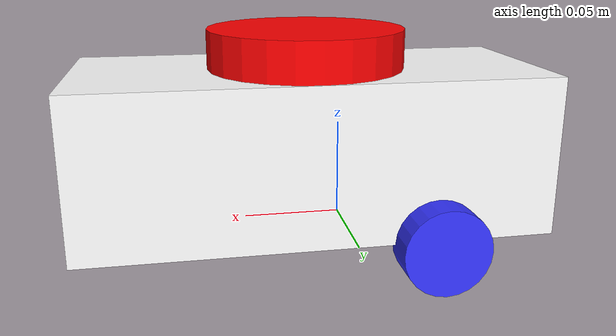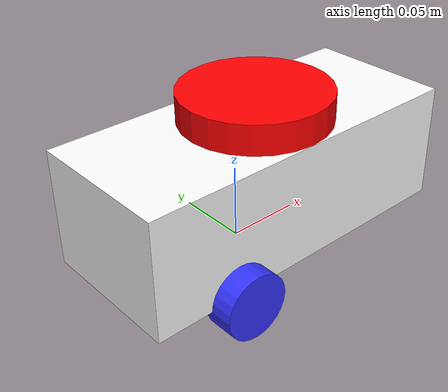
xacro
<?xml version="1.0"?>
<robot xmlns:xacro="http://www.ros.org/wiki/xacro"  name="robot">

    <xacro:arg name="use_ros2_control" default="false"/>
     <xacro:arg name="sim_mode" default="true"/>

    <xacro:include filename="robot_core.xacro" />
    <xacro:include filename="inertial_macros.xacro" />

    <xacro:if value="$(arg use_ros2_control)">
        <xacro:include filename="ros2_control.xacro" />
    </xacro:if>
    <xacro:unless value="$(arg use_ros2_control)">
        <xacro:include filename="gazebo_control.xacro" />
    </xacro:unless>

    <xacro:include filename="lidar.xacro" />

</robot>

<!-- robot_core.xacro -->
<robot xmlns:xacro="http://www.ros.org/wiki/xacro">

    <xacro:include filename="inertial_macros.xacro" />

    <material name="white">
        <color rgba="1 1 1 1"/>
    </material>

    <material name="orange">
        <color rgba="1 0.3 0.1 1"/>
    </material>

    <material name="blue">
        <color rgba="0.2 0.2 1 1"/>
    </material>

    <material name="black">
        <color rgba="0 0 0 1"/>
    </material>

    <material name="red">
        <color rgba="1 0 0 1"/>
    </material>

    <!--BASE  LINK-->
    <link name="base_link">
    </link>

    <!-- BASE_FOOTPRINT LINK -->

    <joint name="base_footprint_joint" type="fixed">
        <parent link="base_link"/>
        <child link="base_footprint"/>
        <origin xyz="0 0 0" rpy="0 0 0"/>
    </joint>

    <link name="base_footprint">
    </link>

    <!--CHASIS LINK-->
    <joint name="chassis_joint" type="fixed">
        <parent link="base_link"/>
        <child link="chassis"/>
        <origin xyz="-0.1 0 0"/>
    </joint>

    <link name="chassis">
        <visual>
            <origin xyz="0.1175 0 0.04" rpy="0 0 0"/>
            <geometry>
                <box size="0.235 0.10 0.08"/>
            </geometry>
            <material name="white"/>
        </visual>
        <collision>
            <origin xyz="0.1175 0 0.04" rpy="0 0 0"/>
            <geometry>
                <box size="0.235 0.10 0.08"/>
            </geometry>
        </collision>
        <xacro:inertial_box mass="0.5" x="0.235" y="0.10" z="0.08">
            <origin xyz="0.1175 0 0.04" rpy="0 0 0"/>
        </xacro:inertial_box>
    </link>

    <gazebo reference="chassis">
        <material>Gazebo/white</material>
    </gazebo>

    <!--LEFT WHEEL LINK-->
    <joint name="left_wheel_joint" type="continuous">
        <parent link="base_link"/>
        <child link="left_wheel"/>
        <origin xyz="-0.04 0.055 0" rpy="-${pi/2} 0 0"/>
        <axis xyz="0 0 1"/>
    </joint>

    <link name="left_wheel">
        <visual>
            <geometry>
                <cylinder radius="0.022" length="0.02" />
            </geometry>
            <material name="blue"/>
        </visual>
        <collision>
            <geometry>
                <cylinder radius="0.022" length="0.001" />
            </geometry>
        </collision>
        <xacro:inertial_cylinder mass="0.1" length="0.02" radius="0.022">
        <origin xyz="0 0 0" rpy="0 0 0"/>
    </xacro:inertial_cylinder>
    </link>

    <gazebo reference="left_wheel">
        <material>Gazebo/Blue</material>
    </gazebo>

    <!--RIGHT WHEEL LINK-->
    <joint name="right_wheel_joint" type="continuous">
        <parent link="base_link"/>
        <child link="right_wheel"/>
        <origin xyz="-0.04 -0.055 0" rpy="${pi/2} 0 0"/>
        <axis xyz="0 0 -1"/>
    </joint>

    <link name="right_wheel">
        <visual>
            <geometry>
                <cylinder radius="0.022" length="0.02" />
            </geometry>
            <material name="blue"/>
        </visual>
        <collision>
            <geometry>
                <cylinder radius="0.022" length="0.001" />
            </geometry>
        </collision>
        <xacro:inertial_cylinder mass="0.1" length="0.02" radius="0.022">
        <origin xyz="0 0 0" rpy="0 0 0"/>
    </xacro:inertial_cylinder>
    </link>

    <gazebo reference="right_wheel">
        <material>Gazebo/Blue</material>
    </gazebo>

    <!--CASTER WHEEL LINK-->
    <joint name="caster_wheel_joint" type="fixed">
        <parent link="chassis"/>
        <child link="caster_wheel"/>
        <origin xyz="0.22 0 0"/>
    </joint>

    <link name="caster_wheel">
        <visual>
            <geometry>
                <sphere radius="0.017" />
            </geometry>
            <material name="black"/>
        </visual>
        <collision>
            <geometry>
                <sphere radius="0.017" />
            </geometry>
        </collision>
        <xacro:inertial_sphere mass="0.1" radius="0.017">
        <origin xyz="0 0 0" rpy="0 0 0"/>
    </xacro:inertial_sphere>
    </link>

    <gazebo reference="caster_wheel">
        <material>Gazebo/Black</material>
        <mu1 value="0.001"/>
        <mu2 value="0.001"/>
    </gazebo>

</robot>

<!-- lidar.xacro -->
<robot xmlns:xacro="http://www.ros.org/wiki/xacro">

    <joint name="laser_joint" type="fixed">
        <parent link="chassis"/>
        <child link="laser_frame"/>
        <origin xyz="0.1175 0 0.08" rpy="0 0 0"/>
    </joint>

    <link name="laser_frame">
        <visual>
            <geometry>
                <cylinder radius="0.05" length="0.04"/>
            </geometry>
            <material name="red"/>
        </visual>
        <collision>
            <geometry>
                <cylinder radius="0.05" length="0.04"/>
            </geometry>
        </collision>
        <xacro:inertial_cylinder mass="0.1" length="0.04" radius="0.05">
            <origin xyz="0 0 0" rpy="0 0 0"/>
        </xacro:inertial_cylinder>
    </link>

    <gazebo reference="laser_frame">
        <material>Gazebo/Red</material>
        <sensor name="laser" type="ray">
            <pose> 0 0 0 0 0 0 </pose>
            <visualize>true</visualize>
            <update_rate>10</update_rate>
            <ray>
                <scan>
                    <horizontal>
                        <samples>360</samples>
                        <resolution>1</resolution>
                        <min_angle>-3.14</min_angle>
                        <max_angle>3.14</max_angle>
                    </horizontal>
                </scan>
                <range>
                    <min>0.3</min>
                    <max>12</max>
                    <resolution>0.01</resolution>
                </range>
            </ray>
            <plugin name="laser_controller" filename="libgazebo_ros_ray_sensor.so">
                <ros>
                    <argument>~/out:=scan</argument>
                </ros>
                <output_type>sensor_msgs/LaserScan</output_type>
                <frame_name>laser_frame</frame_name>
            </plugin>
        </sensor>
    </gazebo>

</robot>
